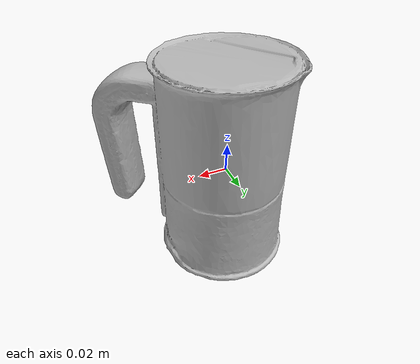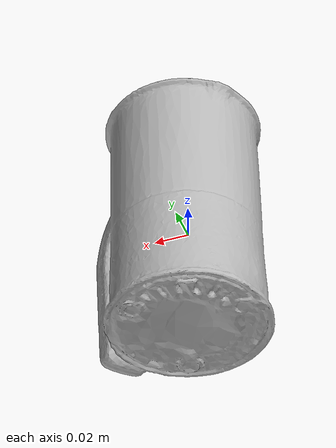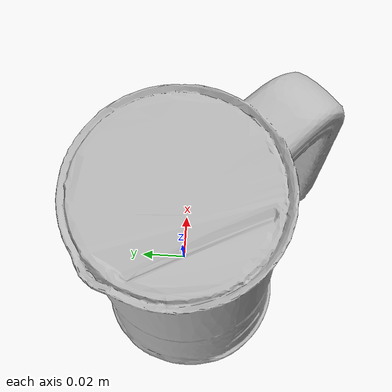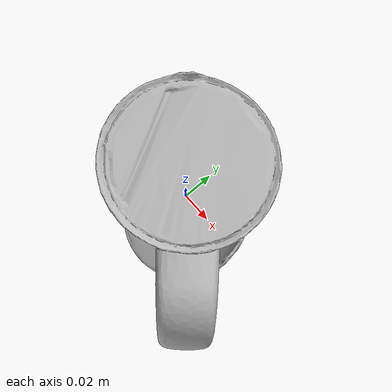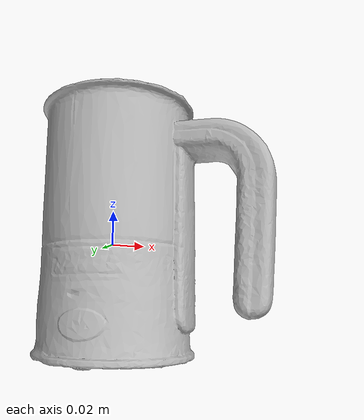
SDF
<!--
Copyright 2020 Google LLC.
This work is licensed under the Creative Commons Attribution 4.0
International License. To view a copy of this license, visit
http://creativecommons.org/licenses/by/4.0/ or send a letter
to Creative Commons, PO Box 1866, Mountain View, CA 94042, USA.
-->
<?xml version="1.0" ?>
<sdf version="1.6">
  <model name="Aroma_Stainless_Steel_Milk_Frother_2_Cup">
    <link name="link_0">
      <visual name="visual">
        <geometry>
          <mesh>
            <uri>meshes/model.obj</uri>
          </mesh>
        </geometry>
      </visual>
      <collision name="collision_0">
        <geometry>
          <mesh>
            <uri>meshes/model.obj</uri>
          </mesh>
        </geometry>
      </collision>
    </link>
  </model>
</sdf>
